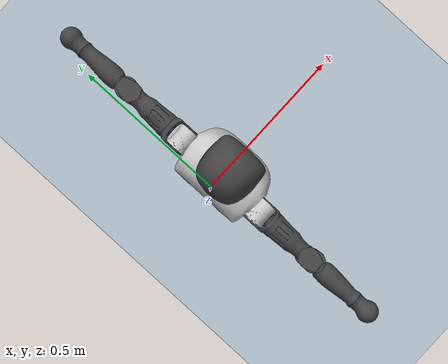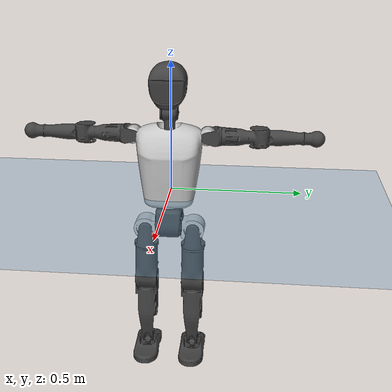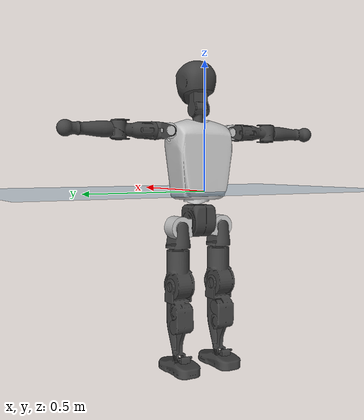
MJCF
<mujoco model="T1">
  <compiler angle="radian" assetdir="assets" balanceinertia="true" inertiafromgeom="false"/>

  <option timestep="0.005" density="1.2" viscosity="2e-05"/>

  <size nkey="1"/>

  <visual>
    <quality shadowsize="8192"/>
    <map shadowclip="0.5"/>
  </visual>

  <default>
    <default class="/">
      <joint armature="0.01" damping="0.01" frictionloss="0.1"/>
      <geom contype="0" conaffinity="0" group="1" solref="-1000 -80"/>
      <site size="0.01 0.005 0.005" group="5"/>
      <general forcelimited="true" biastype="affine" gainprm="25" biasprm="0 -25 -0.6"/>
      <default class="t1">
        <geom rgba="0.25 0.25 0.25 1"/>
        <default class="visual">
          <geom type="mesh" group="2"/>
        </default>
        <default class="collision">
          <geom group="3"/>
        </default>
        <default class="foot">
          <geom size="0.1115 0.05 0.015" type="box" condim="6" group="4" priority="1" solimp="0.015 1 0.015"/>
        </default>
        <default class="reward_collision_sphere">
          <geom group="5" rgba="1 0 0 1"/>
        </default>
      </default>
    </default>
  </default>

  <asset>
    <texture type="skybox" colorspace="auto" name="//unnamed_texture_0" builtin="gradient" rgb1="0.95 0.95 0.95" rgb2="0.95 0.95 0.95" width="100" height="600"/>
    <texture type="2d" colorspace="auto" name="texplane" builtin="checker" rgb1="0.345 0.575 0.748" rgb2="0.345 0.575 0.748" markrgb="1 1 1" width="512" height="512"/>
    <material name="MatPlane" class="/" texture="texplane" texuniform="true" texrepeat="2 2" specular="0.9"/>
    <mesh name="Trunk" class="/" file="Trunk.stl"/>
    <mesh name="H1" class="/" file="H1.stl"/>
    <mesh name="H2" class="/" file="H2.stl"/>
    <mesh name="AL1" class="/" file="AL1.stl"/>
    <mesh name="AL2" class="/" file="AL2.stl"/>
    <mesh name="AL3" class="/" file="AL3.stl"/>
    <mesh name="left_hand_link" class="/" file="left_hand_link.stl"/>
    <mesh name="AR1" class="/" file="AR1.stl"/>
    <mesh name="AR2" class="/" file="AR2.stl"/>
    <mesh name="AR3" class="/" file="AR3.stl"/>
    <mesh name="right_hand_link" class="/" file="right_hand_link.stl"/>
    <mesh name="Waist" class="/" file="Waist.stl"/>
    <mesh name="Hip_Pitch_Left" class="/" file="Hip_Pitch_Left.stl"/>
    <mesh name="Hip_Roll_Left" class="/" file="Hip_Roll_Left.stl"/>
    <mesh name="Hip_Yaw_Left" class="/" file="Hip_Yaw_Left.stl"/>
    <mesh name="Shank_Left" class="/" file="Shank_Left.stl"/>
    <mesh name="Ankle_Cross_Left" class="/" file="Ankle_Cross_Left.stl"/>
    <mesh name="left_foot_link" class="/" file="left_foot_link.stl"/>
    <mesh name="Hip_Pitch_Right" class="/" file="Hip_Pitch_Right.stl"/>
    <mesh name="Hip_Roll_Right" class="/" file="Hip_Roll_Right.stl"/>
    <mesh name="Hip_Yaw_Right" class="/" file="Hip_Yaw_Right.stl"/>
    <mesh name="Shank_Right" class="/" file="Shank_Right.stl"/>
    <mesh name="Ankle_Cross_Right" class="/" file="Ankle_Cross_Right.stl"/>
    <mesh name="right_foot_link" class="/" file="right_foot_link.stl"/>
  </asset>

  <worldbody>
    <geom name="floor" class="/" size="100 100 0.125" type="plane" group="0" material="MatPlane"/>
    <light name="toplight_shadow" class="/" pos="0 0 5" dir="0.0990148 0.0990148 -0.990148" type="directional" ambient="0.04 0.04 0.04" diffuse="0.55 0.55 0.55" specular="0.12 0.12 0.12"/>
    <light name="toplight_fill" class="/" pos="0 0 5" dir="0.0990148 0.0990148 -0.990148" type="directional" castshadow="false" ambient="0.04 0.04 0.04" diffuse="0.3 0.3 0.3" specular="0.08 0.08 0.08"/>
    <body name="trunk" childclass="t1" pos="-0.000260294 6.36584e-05 0.000834852" quat="1 -0.000230432 5.96645e-05 -9.53985e-05">
      <inertial pos="0.0426046 -0.00132024 0.110754" quat="0.999982 0.00211928 -0.00562254 0.000295896" mass="8.45723" diaginertia="0.0269031 0.0398223 0.068213"/>
      <joint name="//unnamed_joint_0" type="free" armature="0" damping="0" frictionloss="0"/>
      <geom name="//unnamed_geom_1" class="visual" rgba="0.76 0.76 0.76 1" mesh="Trunk"/>
      <geom name="//unnamed_geom_2" class="collision" size="0.0677501 0.0903335 0.1355" pos="0.0470431 0 0.125791" type="box"/>
      <geom name="//unnamed_geom_3" class="reward_collision_sphere" size="0.103883" pos="0.0470431 0 0.104826"/>
      <geom name="//unnamed_geom_4" class="reward_collision_sphere" size="0.01355" pos="0.0470431 0.0746038 0"/>
      <geom name="//unnamed_geom_5" class="reward_collision_sphere" size="0.01355" pos="0.0470431 -0.0746038 0"/>
      <geom name="//unnamed_geom_6" class="reward_collision_sphere" size="0.01355" pos="0.0470431 0.093913 0.188687"/>
      <geom name="//unnamed_geom_7" class="reward_collision_sphere" size="0.01355" pos="0.0470431 -0.093913 0.188687"/>
      <site name="imu" pos="0.010467 -0.00721277 -0.0049428" size="0.00903335"/>
      <camera name="track" pos="0 -1.75538 0" quat="0.707107 0.707107 0 0" mode="trackcom"/>
      <camera name="ego_camera" pos="0.0956544 0 0.44027" quat="-0.5 -0.5 0.5 0.5"/>
      <body name="H1" pos="0.0495074 -5.79167e-06 0.254599" quat="1 0.000307877 0.000104387 0.000129478">
        <inertial pos="-0.000934553 -0.00114906 0.0602918" quat="0.761664 -0.0146894 0.00332861 0.647797" mass="0.33232" diaginertia="7.27843e-05 0.000116569 0.000193428"/>
        <joint name="AAHead_yaw" pos="0 0 0" axis="-0.00112709 -0.000568389 0.999999" stiffness="0.00569122" range="-1.58939 1.5661" armature="0.00886874" damping="0.00674657" frictionloss="0.0934574"/>
        <geom name="//unnamed_geom_8" class="visual" mesh="H1"/>
        <body name="H2" pos="-0.000685476 -0.00189052 0.0643485" quat="1 -4.59091e-05 0.000155151 2.81847e-05">
          <inertial pos="0.00738648 0.00248041 0.103212" quat="0.98908 0.101986 -0.0743927 -0.0760607" mass="0.47754" diaginertia="0.000596044 0.0010145 0.00217556"/>
          <joint name="Head_pitch" pos="0 0 0" axis="0.00200532 -0.999996 0.00203268" range="-1.22599 0.351584" armature="0.00843231" damping="0.00618289" frictionloss="0.089655"/>
          <geom name="//unnamed_geom_9" class="visual" mesh="H2"/>
          <geom name="//unnamed_geom_10" class="collision" size="0.0722668" pos="0.00784052 0 0.115309"/>
          <geom name="//unnamed_geom_11" class="reward_collision_sphere" size="0.0813001" pos="0.015681 0 0.104826"/>
        </body>
      </body>
      <body name="AL1" pos="0.0462118 0.0944766 0.230352" quat="1 -9.51459e-05 0.000186258 -0.000252965">
        <inertial pos="-0.00164574 0.0383667 0.00165344" quat="0.501327 0.49695 -0.504277 0.49741" mass="0.390927" diaginertia="0.00040283 0.000671277 0.000364499"/>
        <joint name="Left_Shoulder_Pitch" pos="0 0 0" axis="0.00120827 0.999989 -0.00444612" range="-3.33937 1.22017" armature="0.00896823" damping="0.0121146" frictionloss="0.0894484"/>
        <geom name="//unnamed_geom_12" class="visual" rgba="0.76 0.76 0.76 1" mesh="AL1"/>
        <body name="AL2" pos="-0.000123969 0.0440516 -0.000712378" quat="0.999999 -0.000513751 0.000285715 0.00103295">
          <inertial pos="0.00166215 0.033405 -0.000813928" quat="0.487897 0.512789 -0.487716 0.511016" mass="0.123882" diaginertia="0.000120683 0.000185676 0.000228687"/>
          <joint name="Left_Shoulder_Roll" pos="0 0 0" axis="-0.999985 0.000239626 -0.00543883" range="-1.57197 1.73375" armature="0.00870002" damping="0.000284321" frictionloss="0.0947936"/>
          <geom name="//unnamed_geom_13" class="visual" mesh="AL2"/>
          <body name="AL3" pos="0.000361977 0.05534 0.00052485" quat="1 -1.92034e-05 -0.000919394 -0.000309578">
            <inertial pos="0.000235342 0.0753819 -0.00048156" quat="0.70294 0.711247 -0.0015481 0.000946826" mass="0.767297" diaginertia="0.00387394 0.0068269 0.000811009"/>
            <joint name="Left_Elbow_Pitch" pos="0 0 0" axis="-0.0007474 -1 -0.000153591" range="-2.25598 2.26284" armature="0.00903366" damping="0.0123053" frictionloss="0.0888709"/>
            <geom name="//unnamed_geom_14" class="visual" mesh="AL3"/>
            <geom name="//unnamed_geom_15" class="collision" size="0.0271 0.0677501" pos="0 0.0438846 0" quat="0.707105 0.707108 0 0" type="cylinder"/>
            <geom name="//unnamed_geom_16" class="reward_collision_sphere" size="0.0325201"/>
            <body name="left_hand_link" pos="0.000172544 0.131598 0.000912499" quat="1 0.000748616 -0.000442184 -0.000183546">
              <inertial pos="-0.000378523 0.0970736 -0.00106479" quat="0.708077 0.706098 0.000783494 0.00723391" mass="0.235191" diaginertia="0.00232939 0.00411131 0.00026725"/>
              <joint name="Left_Elbow_Yaw" pos="0 0 0" axis="0.00979553 -0.000119747 0.999952" range="-2.44361 0.0148376" armature="0.00914209" damping="0.0102908" frictionloss="0.0997489"/>
              <geom name="//unnamed_geom_17" class="visual" mesh="left_hand_link"/>
              <geom name="//unnamed_geom_18" class="collision" size="0.0271 0.0790418" pos="0 0.1141 0" quat="0.707105 0.707108 0 0" type="cylinder"/>
              <geom name="//unnamed_geom_19" class="reward_collision_sphere" size="0.0451667"/>
              <geom name="//unnamed_geom_20" class="reward_collision_sphere" size="0.0316167" pos="0 0.096546 0"/>
              <geom name="//unnamed_geom_21" class="reward_collision_sphere" size="0.0316167" pos="0 0.188704 0"/>
            </body>
          </body>
        </body>
      </body>
      <body name="AR1" pos="0.0433269 -0.0917252 0.229556" quat="1 -4.26988e-06 0.000440722 -3.5042e-06">
        <inertial pos="-0.000436726 -0.0392753 0.000314441" quat="0.502546 0.495563 -0.505122 0.496706" mass="0.384044" diaginertia="0.000402895 0.000673254 0.000368279"/>
        <joint name="Right_Shoulder_Pitch" pos="0 0 0" axis="-0.005017 -0.999986 -0.00142378" stiffness="0.0115715" range="-1.19 3.3043" armature="0.00903009" damping="0.0138821" frictionloss="0.0892597"/>
        <geom name="//unnamed_geom_22" class="visual" rgba="0.76 0.76 0.76 1" mesh="AR1"/>
        <body name="AR2" pos="-0.00213974 -0.0394529 7.57507e-05" quat="1 0.000190165 -3.86712e-05 -7.82876e-05">
          <inertial pos="0.00317198 -0.0343408 0.000141385" quat="0.512879 0.48899 -0.510052 0.487535" mass="0.116874" diaginertia="0.000115006 0.000172849 0.000222631"/>
          <joint name="Right_Shoulder_Roll" pos="0 0 0" axis="-0.999987 0.000297114 0.00511785" stiffness="0.00102417" range="-1.75338 1.53601" armature="0.00890329" damping="0.004796" frictionloss="0.0829921"/>
          <geom name="//unnamed_geom_23" class="visual" mesh="AR2"/>
          <body name="AR3" pos="0.000410969 -0.0510969 0.00108075" quat="1 8.4625e-05 0.000198073 -5.41072e-05">
            <inertial pos="-0.000519333 -0.0743253 8.67527e-06" quat="0.711074 0.703046 -0.0080402 0.00603854" mass="0.760703" diaginertia="0.00385598 0.00667815 0.000792944"/>
            <joint name="Right_Elbow_Pitch" pos="0 0 0" axis="0.00168685 0.999998 -0.00078571" stiffness="0.00671675" range="-2.27244 2.27248" armature="0.00899336" damping="0.00690235" frictionloss="0.0987232"/>
            <geom name="//unnamed_geom_24" class="visual" mesh="AR3"/>
            <geom name="//unnamed_geom_25" class="collision" size="0.0271 0.0677501" pos="0 -0.0438846 0" quat="0.707105 0.707108 0 0" type="cylinder"/>
            <geom name="//unnamed_geom_26" class="reward_collision_sphere" size="0.0325201"/>
            <body name="right_hand_link" pos="-0.00190524 -0.129551 -0.00131838" quat="1 -3.24691e-05 0.000227651 3.36532e-05">
              <inertial pos="-0.000529931 -0.0960479 0.00256595" quat="0.704845 0.70932 0.00769656 -0.000635962" mass="0.235532" diaginertia="0.00235923 0.00411364 0.000265226"/>
              <joint name="Right_Elbow_Yaw" pos="0 0 0" axis="-0.00291879 -0.00206869 0.999994" range="-0.0197788 2.43242" armature="0.0100543" damping="0.0053904" frictionloss="0.090275"/>
              <geom name="//unnamed_geom_27" class="visual" mesh="right_hand_link"/>
              <geom name="//unnamed_geom_28" class="collision" size="0.0271 0.0790418" pos="0 -0.1141 0" quat="0.707105 0.707108 0 0" type="cylinder"/>
              <geom name="//unnamed_geom_29" class="reward_collision_sphere" size="0.0451667"/>
              <geom name="//unnamed_geom_30" class="reward_collision_sphere" size="0.0316167" pos="0 -0.096546 0"/>
              <geom name="//unnamed_geom_31" class="reward_collision_sphere" size="0.0316167" pos="0 -0.188704 0"/>
            </body>
          </body>
        </body>
      </body>
      <body name="Waist" pos="0.0491219 -0.00232031 -0.121742" quat="1 -9.44911e-06 9.6155e-05 -4.68872e-05">
        <inertial pos="0.00326897 -0.000176476 0.0082524" quat="0.984462 -0.00032628 -0.175577 0.00280556" mass="1.88238" diaginertia="0.00157352 0.00266818 0.00594808"/>
        <joint name="Waist" pos="0 0 0" axis="0.00071373 -0.00387947 0.999992" range="-1.52844 1.55133" armature="0.00851503" damping="0.0106315" frictionloss="0.0879789"/>
        <geom name="//unnamed_geom_32" class="visual" mesh="Waist"/>
        <body name="Hip_Pitch_Left" pos="-0.00108456 0.0937322 5.4381e-05" quat="1 -0.000392644 -0.00045941 -0.00052763">
          <inertial pos="0.000986001 -0.00465355 -0.0193362" quat="0.97534 0.22023 0.0144089 0.00193665" mass="0.755583" diaginertia="0.000533671 0.000782291 0.00158641"/>
          <joint name="Left_Hip_Pitch" pos="0 0 0" axis="-0.0002295 1 0.000226303" stiffness="0.000682672" range="-1.79859 1.5711" armature="0.00901353" damping="0.00534933" frictionloss="0.0903165"/>
          <geom name="//unnamed_geom_33" class="visual" rgba="0.76 0.76 0.76 1" mesh="Hip_Pitch_Left"/>
          <body name="Hip_Roll_Left" pos="-0.000435424 8.60497e-05 -0.0206904" quat="1 0.000184382 -0.000277308 -0.000304146">
            <inertial pos="0.0016682 0.000236159 -0.0553041" quat="0.707582 -0.00596961 -0.00718317 0.706569" mass="0.28307" diaginertia="0.000512912 0.000773839 0.000639372"/>
            <joint name="Left_Hip_Roll" pos="0 0 0" axis="-0.999993 -0.00331927 0.00198403" range="-1.58267 0.217623" armature="0.00907405" damping="0.00772253" frictionloss="0.0941732"/>
            <geom name="//unnamed_geom_34" class="visual" mesh="Hip_Roll_Left"/>
            <geom name="//unnamed_geom_35" class="reward_collision_sphere" size="0.0496834"/>
            <body name="Hip_Yaw_Left" pos="0.00184572 -0.00131896 -0.086645" quat="1 -0.000116207 -5.22735e-05 6.66767e-06">
              <inertial pos="-0.00558201 5.30068e-05 -0.0933114" quat="0.692694 -0.0344175 -0.0231465 0.720038" mass="1.61234" diaginertia="0.00765376 0.0128238 0.00325402"/>
              <joint name="Left_Hip_Yaw" pos="0 0 0" axis="0.0029326 0.00304545 -0.999991" range="-1.01019 1.01264" armature="0.00908156" damping="0.0160087" frictionloss="0.0905463"/>
              <geom name="//unnamed_geom_36" class="visual" mesh="Hip_Yaw_Left"/>
              <geom name="//unnamed_geom_37" class="collision" size="0.0451667 0.0722668" type="cylinder"/>
              <body name="Shank_Left" pos="-0.00884829 0.000337865 -0.140223" quat="1 0.000235061 9.14788e-05 -4.26116e-05">
                <inertial pos="-0.00447813 -0.000364148 -0.129913" quat="0.997822 0.00122332 -0.0233386 0.0616907" mass="1.25513" diaginertia="0.0103085 0.017897 0.00233506"/>
                <joint name="Left_Knee_Pitch" pos="0 0 0" axis="-0.00479089 0.999988 -0.0014237" range="-0.0192258 2.34397" armature="0.00875347" damping="0.00713794" frictionloss="0.0961284"/>
                <geom name="//unnamed_geom_38" class="visual" mesh="Shank_Left"/>
                <geom name="//unnamed_geom_39" class="collision" size="0.0451667 0.0677501" pos="0 0 -0.125791" type="cylinder"/>
                <geom name="//unnamed_geom_40" class="reward_collision_sphere" size="0.0587168"/>
                <body name="Ankle_Cross_Left" pos="-0.000354773 0.000140655 -0.294157" quat="1 0.000163243 -3.38435e-05 -0.000101682">
                  <inertial pos="-0.00307474 -0.000482133 -0.0105644" quat="0.442441 0.550216 0.554815 0.440101" mass="0.0549843" diaginertia="8.90907e-06 1.36017e-05 1.47051e-05"/>
                  <joint name="Left_Ankle_Pitch" pos="0 0 0" axis="0.00208426 0.999997 -0.00111218" stiffness="0.00266695" range="-0.913337 0.341478" armature="0.00933396" damping="0.00300203" frictionloss="0.0967201"/>
                  <geom name="//unnamed_geom_41" class="visual" mesh="Ankle_Cross_Left"/>
                  <body name="left_foot_link" pos="4.66909e-05 -8.21935e-05 -0.015063" quat="1 -0.000376652 -0.000154648 8.73919e-05">
                    <inertial pos="0.000674023 -0.00166264 -0.00988476" quat="-9.92528e-06 0.62056 0.00033029 0.784159" mass="0.509362" diaginertia="0.000800171 0.00124114 0.00273392"/>
                    <joint name="Left_Ankle_Roll" pos="0 0 0" axis="-0.999997 0.00239847 0.000338115" range="-0.441097 0.460161" armature="0.00898069" damping="0.0154592" frictionloss="0.0925064"/>
                    <geom name="//unnamed_geom_42" class="visual" mesh="left_foot_link"/>
                    <geom name="left_foot" class="foot" size="0.100844 0.0491428 0.0135935" pos="0.00784052 0 -0.0157239"/>
                    <geom name="//unnamed_geom_44" class="reward_collision_sphere" size="0.0469734" pos="0.00784052 0 -0.0157239"/>
                    <geom name="//unnamed_geom_45" class="reward_collision_sphere" size="0.0271" pos="0.0744849 -0.0201869 -0.0157239"/>
                    <geom name="//unnamed_geom_46" class="reward_collision_sphere" size="0.0271" pos="-0.0548836 -0.0201869 -0.0157239"/>
                    <site name="left_foot" class="foot" pos="0.00784052 0 -0.0157239" size="0.00903335"/>
                  </body>
                </body>
              </body>
            </body>
          </body>
        </body>
        <body name="Hip_Pitch_Right" pos="0.00118446 -0.0922221 0.000737857" quat="1 0.000116152 7.97557e-05 5.51334e-05">
          <inertial pos="0.00019902 0.00566271 -0.0168437" quat="0.973798 -0.22648 0.0204854 -0.00217489" mass="0.746147" diaginertia="0.000529506 0.000754679 0.00158212"/>
          <joint name="Right_Hip_Pitch" pos="0 0 0" axis="-0.00227431 -0.999997 0.000237002" range="-1.5661 1.78939" armature="0.0095174" damping="0.0112005" frictionloss="0.0881733"/>
          <geom name="//unnamed_geom_47" class="visual" rgba="0.76 0.76 0.76 1" mesh="Hip_Pitch_Right"/>
          <body name="Hip_Roll_Right" pos="-0.00125235 0.000874381 -0.0213945" quat="0.999999 0.000432374 -0.00065539 0.000959549">
            <inertial pos="0.00336053 -0.000892746 -0.0563777" quat="0.705814 -0.00469263 -0.00217214 0.708378" mass="0.282026" diaginertia="0.000511339 0.000778648 0.000647224"/>
            <joint name="Right_Hip_Roll" pos="0 0 0" axis="-0.999994 0.00325386 -0.0015421" range="-0.197929 1.58874" armature="0.0093191" damping="0.00692896" frictionloss="0.0902275"/>
            <geom name="//unnamed_geom_48" class="visual" mesh="Hip_Roll_Right"/>
            <geom name="//unnamed_geom_49" class="reward_collision_sphere" size="0.0496834"/>
            <body name="Hip_Yaw_Right" pos="0.000440888 -0.000568587 -0.0856775" quat="0.999999 -0.000928698 0.000171334 0.000453909">
              <inertial pos="-0.00539538 -0.000306152 -0.0944733" quat="0.714636 -0.0316727 -0.0337006 0.697966" mass="1.6094" diaginertia="0.00793358 0.0138114 0.00331445"/>
              <joint name="Right_Hip_Yaw" pos="0 0 0" axis="0.000788203 0.00205634 -0.999998" range="-0.998256 0.96378" armature="0.00915177" damping="0.012074" frictionloss="0.082952"/>
              <geom name="//unnamed_geom_50" class="visual" mesh="Hip_Yaw_Right"/>
              <geom name="//unnamed_geom_51" class="collision" size="0.0451667 0.0722668" type="cylinder"/>
              <body name="Shank_Right" pos="-0.0122543 -0.000348777 -0.140517" quat="1 0.000318243 -0.000468837 -0.000421948">
                <inertial pos="-0.00342261 -0.000586665 -0.128439" quat="0.999282 2.15454e-05 -0.0237171 -0.0295345" mass="1.35069" diaginertia="0.0104598 0.0178451 0.00245942"/>
                <joint name="Right_Knee_Pitch" pos="0 0 0" axis="0.00210059 -0.999989 0.00412152" range="-2.32403 0.00554355" armature="0.00930449" damping="0.00673913" frictionloss="0.0861425"/>
                <geom name="//unnamed_geom_52" class="visual" mesh="Shank_Right"/>
                <geom name="//unnamed_geom_53" class="collision" size="0.0451667 0.0677501" pos="0 0 -0.125791" type="cylinder"/>
                <geom name="//unnamed_geom_54" class="reward_collision_sphere" size="0.0587168"/>
                <body name="Ankle_Cross_Right" pos="0.00187887 -0.000631004 -0.294068" quat="1 -0.000239819 0.000384227 -0.000598246">
                  <inertial pos="-0.00281049 0.00022774 -0.00863916" quat="0.441269 0.552267 0.553795 0.439993" mass="0.052586" diaginertia="8.55949e-06 1.32777e-05 1.42171e-05"/>
                  <joint name="Right_Ankle_Pitch" pos="0 0 0" axis="0.0118813 -0.999927 0.00231899" range="-0.354114 0.863121" armature="0.0094274" damping="0.00530867" frictionloss="0.0806888"/>
                  <geom name="//unnamed_geom_55" class="visual" mesh="Ankle_Cross_Right"/>
                  <body name="right_foot_link" pos="0.0012183 -0.00062036 -0.0130827" quat="1 9.36343e-05 0.000218123 0.000158867">
                    <inertial pos="-0.000730568 -0.000146123 -0.0108019" quat="-0.000141943 0.619898 -0.000462878 0.784682" mass="0.50595" diaginertia="0.000788041 0.00123398 0.00276344"/>
                    <joint name="Right_Ankle_Roll" pos="0 0 0" axis="-0.999979 -0.00624067 0.00177118" range="-0.395338 0.423852" armature="0.00874641" damping="0.00900878" frictionloss="0.0927493"/>
                    <geom name="//unnamed_geom_56" class="visual" mesh="right_foot_link"/>
                    <geom name="right_foot" class="foot" size="0.0922759 0.0453496 0.013657" pos="0.00784052 0 -0.0157239"/>
                    <geom name="//unnamed_geom_58" class="reward_collision_sphere" size="0.0361334"/>
                    <geom name="//unnamed_geom_59" class="reward_collision_sphere" size="0.0271" pos="0.00784052 0 -0.0157239"/>
                    <geom name="//unnamed_geom_60" class="reward_collision_sphere" size="0.0271" pos="0.0744849 0.0201869 -0.0157239"/>
                    <geom name="//unnamed_geom_61" class="reward_collision_sphere" size="0.0271" pos="-0.0548836 0.0201869 -0.0157239"/>
                    <site name="right_foot" class="foot" pos="0.00784052 0 -0.0157239" size="0.00903335"/>
                  </body>
                </body>
              </body>
            </body>
          </body>
        </body>
      </body>
    </body>
  </worldbody>

  <contact>
    <pair class="/" geom1="floor" geom2="left_foot" name="//unnamed_contact_0"/>
    <pair class="/" geom1="floor" geom2="right_foot" name="//unnamed_contact_1"/>
  </contact>

  <actuator>
    <general name="AAHead_yaw" class="/" joint="AAHead_yaw" forcerange="-6.52434 6.52434" gainprm="23.0482" biasprm="0 -23.0482 -0.513516"/>
    <general name="Head_pitch" class="/" joint="Head_pitch" forcerange="-6.41899 6.41899" gainprm="23.0482" biasprm="0 -23.0482 -0.513516"/>
    <general name="Left_Shoulder_Pitch" class="/" joint="Left_Shoulder_Pitch" forcerange="-16.4153 16.4153" gainprm="23.0482" biasprm="0 -23.0482 -0.513516"/>
    <general name="Left_Shoulder_Roll" class="/" joint="Left_Shoulder_Roll" forcerange="-16.2183 16.2183" gainprm="23.0482" biasprm="0 -23.0482 -0.513516"/>
    <general name="Left_Elbow_Pitch" class="/" joint="Left_Elbow_Pitch" forcerange="-17.0274 17.0274" gainprm="23.0482" biasprm="0 -23.0482 -0.513516"/>
    <general name="Left_Elbow_Yaw" class="/" joint="Left_Elbow_Yaw" forcerange="-16.3411 16.3411" gainprm="23.0482" biasprm="0 -23.0482 -0.513516"/>
    <general name="Right_Shoulder_Pitch" class="/" joint="Right_Shoulder_Pitch" forcerange="-16.3833 16.3833" gainprm="23.0482" biasprm="0 -23.0482 -0.513516"/>
    <general name="Right_Shoulder_Roll" class="/" joint="Right_Shoulder_Roll" forcerange="-16.3793 16.3793" gainprm="23.0482" biasprm="0 -23.0482 -0.513516"/>
    <general name="Right_Elbow_Pitch" class="/" joint="Right_Elbow_Pitch" forcerange="-16.7564 16.7564" gainprm="23.0482" biasprm="0 -23.0482 -0.513516"/>
    <general name="Right_Elbow_Yaw" class="/" joint="Right_Elbow_Yaw" forcerange="-16.9412 16.9412" gainprm="23.0482" biasprm="0 -23.0482 -0.513516"/>
    <general name="Waist" class="/" joint="Waist" forcerange="-26.4004 26.4004" gainprm="23.0482" biasprm="0 -23.0482 -0.513516"/>
    <general name="Left_Hip_Pitch" class="/" joint="Left_Hip_Pitch" forcerange="-37.2632 37.2632" gainprm="23.0482" biasprm="0 -23.0482 -0.513516"/>
    <general name="Left_Hip_Roll" class="/" joint="Left_Hip_Roll" forcerange="-26.7912 26.7912" gainprm="23.0482" biasprm="0 -23.0482 -0.513516"/>
    <general name="Left_Hip_Yaw" class="/" joint="Left_Hip_Yaw" forcerange="-26.1363 26.1363" gainprm="23.0482" biasprm="0 -23.0482 -0.513516"/>
    <general name="Left_Knee_Pitch" class="/" joint="Left_Knee_Pitch" forcerange="-56.3849 56.3849" gainprm="23.0482" biasprm="0 -23.0482 -0.513516"/>
    <general name="Left_Ankle_Pitch" class="/" joint="Left_Ankle_Pitch" forcerange="-18.0981 18.0981" gainprm="23.0482" biasprm="0 -23.0482 -0.513516"/>
    <general name="Left_Ankle_Roll" class="/" joint="Left_Ankle_Roll" forcerange="-13.417 13.417" gainprm="23.0482" biasprm="0 -23.0482 -0.513516"/>
    <general name="Right_Hip_Pitch" class="/" joint="Right_Hip_Pitch" forcerange="-43.5309 43.5309" gainprm="23.0482" biasprm="0 -23.0482 -0.513516"/>
    <general name="Right_Hip_Roll" class="/" joint="Right_Hip_Roll" forcerange="-26.6079 26.6079" gainprm="23.0482" biasprm="0 -23.0482 -0.513516"/>
    <general name="Right_Hip_Yaw" class="/" joint="Right_Hip_Yaw" forcerange="-26.1394 26.1394" gainprm="23.0482" biasprm="0 -23.0482 -0.513516"/>
    <general name="Right_Knee_Pitch" class="/" joint="Right_Knee_Pitch" forcerange="-53.6447 53.6447" gainprm="23.0482" biasprm="0 -23.0482 -0.513516"/>
    <general name="Right_Ankle_Pitch" class="/" joint="Right_Ankle_Pitch" forcerange="-18.659 18.659" gainprm="23.0482" biasprm="0 -23.0482 -0.513516"/>
    <general name="Right_Ankle_Roll" class="/" joint="Right_Ankle_Roll" forcerange="-12.6075 12.6075" gainprm="23.0482" biasprm="0 -23.0482 -0.513516"/>
  </actuator>

  <sensor>
    <gyro site="imu" name="imu_angular_velocity"/>
    <velocimeter site="imu" name="imu_linear_velocity"/>
    <framelinvel objtype="site" objname="left_foot" name="left_foot_global_linear_velocity"/>
    <framelinvel objtype="site" objname="right_foot" name="right_foot_global_linear_velocity"/>
  </sensor>

  <keyframe>
    <key name="home" qpos="0 0 0.6385 1 0 0 0 0 0 0 1.4 0 -0.4 0 -1.4 0 0.4 0 -0.4 0 0 0.8 -0.4 0 0.4 0 0 -0.8 0.4 0"/>
  </keyframe>
</mujoco>
